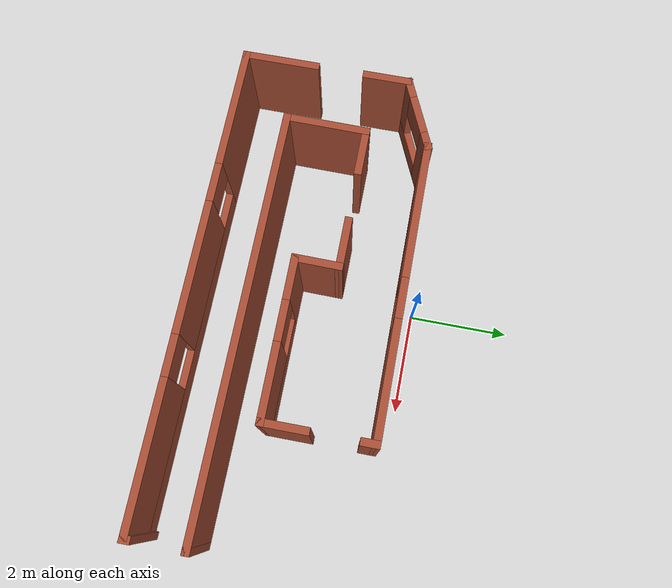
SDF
<?xml version='1.0'?>
<sdf version='1.7'>
  <model name='mybuilding'>
    <pose>0.444099 -2.1725 0 0 -0 0</pose>
    <link name='Wall_0'>
      <pose>-4.7641 -0.4225 0 0 -0 -1.5708</pose>
      <visual name='Wall_0_Visual_0'>
        <pose>-1.2425 0 1 0 -0 0</pose>
        <geometry>
          <box>
            <size>1.015 0.15 2</size>
          </box>
        </geometry>
        <material>
          <script>
            <uri>file://media/materials/scripts/gazebo.material</uri>
            <name>Gazebo/Bricks</name>
          </script>
          <ambient>0.996078 0.47451 0.0196078 1</ambient>
        </material>
        <meta>
          <layer>0</layer>
        </meta>
      </visual>
      <collision name='Wall_0_Collision_0'>
        <geometry>
          <box>
            <size>1.015 0.15 2</size>
          </box>
        </geometry>
        <pose>-1.2425 0 1 0 -0 0</pose>
      </collision>
      <visual name='Wall_0_Visual_1'>
        <pose>0.9575 0 1 0 -0 0</pose>
        <geometry>
          <box>
            <size>1.585 0.15 2</size>
          </box>
        </geometry>
        <material>
          <script>
            <uri>file://media/materials/scripts/gazebo.material</uri>
            <name>Gazebo/Bricks</name>
          </script>
          <ambient>0.996078 0.47451 0.0196078 1</ambient>
        </material>
        <meta>
          <layer>0</layer>
        </meta>
      </visual>
      <collision name='Wall_0_Collision_1'>
        <geometry>
          <box>
            <size>1.585 0.15 2</size>
          </box>
        </geometry>
        <pose>0.9575 0 1 0 -0 0</pose>
      </collision>
    </link>
    <link name='Wall_1'>
      <pose>0.011901 -2.0975 0 0 -0 0</pose>
      <visual name='Wall_1_Visual_0'>
        <pose>-3.5808 0 1 0 -0 0</pose>
        <geometry>
          <box>
            <size>2.5408 0.15 2</size>
          </box>
        </geometry>
        <material>
          <script>
            <uri>file://media/materials/scripts/gazebo.material</uri>
            <name>Gazebo/Bricks</name>
          </script>
          <ambient>0.996078 0.47451 0.0196078 1</ambient>
        </material>
        <meta>
          <layer>0</layer>
        </meta>
      </visual>
      <collision name='Wall_1_Collision_0'>
        <geometry>
          <box>
            <size>2.5408 0.15 2</size>
          </box>
        </geometry>
        <pose>-3.5808 0 1 0 -0 0</pose>
      </collision>
      <visual name='Wall_1_Visual_1'>
        <pose>1.2704 0 0.25 0 -0 0</pose>
        <geometry>
          <box>
            <size>7.1616 0.15 0.5</size>
          </box>
        </geometry>
        <material>
          <script>
            <uri>file://media/materials/scripts/gazebo.material</uri>
            <name>Gazebo/Bricks</name>
          </script>
          <ambient>0.996078 0.47451 0.0196078 1</ambient>
        </material>
        <meta>
          <layer>0</layer>
        </meta>
      </visual>
      <collision name='Wall_1_Collision_1'>
        <geometry>
          <box>
            <size>7.1616 0.15 0.5</size>
          </box>
        </geometry>
        <pose>1.2704 0 0.25 0 -0 0</pose>
      </collision>
      <visual name='Wall_1_Visual_2'>
        <pose>-0.1791 0 1.25 0 -0 0</pose>
        <geometry>
          <box>
            <size>2.6626 0.15 1.5</size>
          </box>
        </geometry>
        <material>
          <script>
            <uri>file://media/materials/scripts/gazebo.material</uri>
            <name>Gazebo/Bricks</name>
          </script>
          <ambient>0.996078 0.47451 0.0196078 1</ambient>
        </material>
        <meta>
          <layer>0</layer>
        </meta>
      </visual>
      <collision name='Wall_1_Collision_2'>
        <geometry>
          <box>
            <size>2.6626 0.15 1.5</size>
          </box>
        </geometry>
        <pose>-0.1791 0 1.25 0 -0 0</pose>
      </collision>
      <visual name='Wall_1_Visual_3'>
        <pose>3.4017 0 1.25 0 -0 0</pose>
        <geometry>
          <box>
            <size>2.899 0.15 1.5</size>
          </box>
        </geometry>
        <material>
          <script>
            <uri>file://media/materials/scripts/gazebo.material</uri>
            <name>Gazebo/Bricks</name>
          </script>
          <ambient>0.996078 0.47451 0.0196078 1</ambient>
        </material>
        <meta>
          <layer>0</layer>
        </meta>
      </visual>
      <collision name='Wall_1_Collision_3'>
        <geometry>
          <box>
            <size>2.899 0.15 1.5</size>
          </box>
        </geometry>
        <pose>3.4017 0 1.25 0 -0 0</pose>
      </collision>
      <visual name='Wall_1_Visual_4'>
        <pose>-1.9104 0 1.65 0 -0 0</pose>
        <geometry>
          <box>
            <size>0.8 0.15 0.7</size>
          </box>
        </geometry>
        <material>
          <script>
            <uri>file://media/materials/scripts/gazebo.material</uri>
            <name>Gazebo/Bricks</name>
          </script>
          <ambient>0.996078 0.47451 0.0196078 1</ambient>
        </material>
        <meta>
          <layer>0</layer>
        </meta>
      </visual>
      <collision name='Wall_1_Collision_4'>
        <geometry>
          <box>
            <size>0.8 0.15 0.7</size>
          </box>
        </geometry>
        <pose>-1.9104 0 1.65 0 -0 0</pose>
      </collision>
      <visual name='Wall_1_Visual_5'>
        <pose>1.5522 0 1.65 0 -0 0</pose>
        <geometry>
          <box>
            <size>0.8 0.15 0.7</size>
          </box>
        </geometry>
        <material>
          <script>
            <uri>file://media/materials/scripts/gazebo.material</uri>
            <name>Gazebo/Bricks</name>
          </script>
          <ambient>0.996078 0.47451 0.0196078 1</ambient>
        </material>
        <meta>
          <layer>0</layer>
        </meta>
      </visual>
      <collision name='Wall_1_Collision_5'>
        <geometry>
          <box>
            <size>0.8 0.15 0.7</size>
          </box>
        </geometry>
        <pose>1.5522 0 1.65 0 -0 0</pose>
      </collision>
    </link>
    <link name='Wall_10'>
      <pose>-4.0891 1.5525 0 0 -0 -2.72337</pose>
      <visual name='Wall_10_Visual_0'>
        <pose>-0.618255 0 1 0 -0 0</pose>
        <geometry>
          <box>
            <size>0.390819 0.15 2</size>
          </box>
        </geometry>
        <material>
          <script>
            <uri>file://media/materials/scripts/gazebo.material</uri>
            <name>Gazebo/Bricks</name>
          </script>
          <ambient>0.996078 0.47451 0.0196078 1</ambient>
        </material>
        <meta>
          <layer>0</layer>
        </meta>
      </visual>
      <collision name='Wall_10_Collision_0'>
        <geometry>
          <box>
            <size>0.390819 0.15 2</size>
          </box>
        </geometry>
        <pose>-0.618255 0 1 0 -0 0</pose>
      </collision>
      <visual name='Wall_10_Visual_1'>
        <pose>0.19541 0 0.25 0 -0 0</pose>
        <geometry>
          <box>
            <size>1.23651 0.15 0.5</size>
          </box>
        </geometry>
        <material>
          <script>
            <uri>file://media/materials/scripts/gazebo.material</uri>
            <name>Gazebo/Bricks</name>
          </script>
          <ambient>0.996078 0.47451 0.0196078 1</ambient>
        </material>
        <meta>
          <layer>0</layer>
        </meta>
      </visual>
      <collision name='Wall_10_Collision_1'>
        <geometry>
          <box>
            <size>1.23651 0.15 0.5</size>
          </box>
        </geometry>
        <pose>0.19541 0 0.25 0 -0 0</pose>
      </collision>
      <visual name='Wall_10_Visual_2'>
        <pose>0.59541 0 1.25 0 -0 0</pose>
        <geometry>
          <box>
            <size>0.43651 0.15 1.5</size>
          </box>
        </geometry>
        <material>
          <script>
            <uri>file://media/materials/scripts/gazebo.material</uri>
            <name>Gazebo/Bricks</name>
          </script>
          <ambient>0.996078 0.47451 0.0196078 1</ambient>
        </material>
        <meta>
          <layer>0</layer>
        </meta>
      </visual>
      <collision name='Wall_10_Collision_2'>
        <geometry>
          <box>
            <size>0.43651 0.15 1.5</size>
          </box>
        </geometry>
        <pose>0.59541 0 1.25 0 -0 0</pose>
      </collision>
      <visual name='Wall_10_Visual_3'>
        <pose>-0.022845 0 1.65 0 -0 0</pose>
        <geometry>
          <box>
            <size>0.8 0.15 0.7</size>
          </box>
        </geometry>
        <material>
          <script>
            <uri>file://media/materials/scripts/gazebo.material</uri>
            <name>Gazebo/Bricks</name>
          </script>
          <ambient>0.996078 0.47451 0.0196078 1</ambient>
        </material>
        <meta>
          <layer>0</layer>
        </meta>
      </visual>
      <collision name='Wall_10_Collision_3'>
        <geometry>
          <box>
            <size>0.8 0.15 0.7</size>
          </box>
        </geometry>
        <pose>-0.022845 0 1.65 0 -0 0</pose>
      </collision>
    </link>
    <link name='Wall_2'>
      <pose>4.7879 -1.5475 0 0 -0 1.5708</pose>
      <visual name='Wall_2_Visual_0'>
        <pose>-0.5225 0 1 0 -0 0</pose>
        <geometry>
          <box>
            <size>0.205 0.15 2</size>
          </box>
        </geometry>
        <material>
          <script>
            <uri>file://media/materials/scripts/gazebo.material</uri>
            <name>Gazebo/Bricks</name>
          </script>
          <ambient>0.996078 0.47451 0.0196078 1</ambient>
        </material>
        <meta>
          <layer>0</layer>
        </meta>
      </visual>
      <collision name='Wall_2_Collision_0'>
        <geometry>
          <box>
            <size>0.205 0.15 2</size>
          </box>
        </geometry>
        <pose>-0.5225 0 1 0 -0 0</pose>
      </collision>
      <visual name='Wall_2_Visual_1'>
        <pose>0.5525 0 1 0 -0 0</pose>
        <geometry>
          <box>
            <size>0.145 0.15 2</size>
          </box>
        </geometry>
        <material>
          <script>
            <uri>file://media/materials/scripts/gazebo.material</uri>
            <name>Gazebo/Bricks</name>
          </script>
          <ambient>0.996078 0.47451 0.0196078 1</ambient>
        </material>
        <meta>
          <layer>0</layer>
        </meta>
      </visual>
      <collision name='Wall_2_Collision_1'>
        <geometry>
          <box>
            <size>0.145 0.15 2</size>
          </box>
        </geometry>
        <pose>0.5525 0 1 0 -0 0</pose>
      </collision>
    </link>
    <link name='Wall_3'>
      <collision name='Wall_3_Collision'>
        <geometry>
          <box>
            <size>8.46826 0.15 2</size>
          </box>
        </geometry>
        <pose>0 0 1 0 -0 0</pose>
      </collision>
      <visual name='Wall_3_Visual'>
        <pose>0 0 1 0 -0 0</pose>
        <geometry>
          <box>
            <size>8.46826 0.15 2</size>
          </box>
        </geometry>
        <material>
          <script>
            <uri>file://media/materials/scripts/gazebo.material</uri>
            <name>Gazebo/Bricks</name>
          </script>
          <ambient>0.996078 0.47451 0.0196078 1</ambient>
        </material>
        <meta>
          <layer>0</layer>
        </meta>
      </visual>
      <pose>0.628901 -0.9975 0 0 -0 3.14159</pose>
    </link>
    <link name='Wall_4'>
      <collision name='Wall_4_Collision'>
        <geometry>
          <box>
            <size>1.75 0.15 2</size>
          </box>
        </geometry>
        <pose>0 0 1 0 -0 0</pose>
      </collision>
      <visual name='Wall_4_Visual'>
        <pose>0 0 1 0 -0 0</pose>
        <geometry>
          <box>
            <size>1.75 0.15 2</size>
          </box>
        </geometry>
        <material>
          <script>
            <uri>file://media/materials/scripts/gazebo.material</uri>
            <name>Gazebo/Bricks</name>
          </script>
          <ambient>0.996078 0.47451 0.0196078 1</ambient>
        </material>
        <meta>
          <layer>0</layer>
        </meta>
      </visual>
      <pose>-3.5221 -0.1975 0 0 -0 1.5608</pose>
    </link>
    <link name='Wall_5'>
      <pose>-2.0891 0.6025 0 0 -0 0</pose>
      <visual name='Wall_5_Visual_0'>
        <pose>-0.989176 0 1 0 -0 0</pose>
        <geometry>
          <box>
            <size>1.02165 0.15 2</size>
          </box>
        </geometry>
        <material>
          <script>
            <uri>file://media/materials/scripts/gazebo.material</uri>
            <name>Gazebo/Bricks</name>
          </script>
          <ambient>0.996078 0.47451 0.0196078 1</ambient>
        </material>
        <meta>
          <layer>0</layer>
        </meta>
      </visual>
      <collision name='Wall_5_Collision_0'>
        <geometry>
          <box>
            <size>1.02165 0.15 2</size>
          </box>
        </geometry>
        <pose>-0.989176 0 1 0 -0 0</pose>
      </collision>
      <visual name='Wall_5_Visual_1'>
        <pose>0.960824 0 1 0 -0 0</pose>
        <geometry>
          <box>
            <size>1.07835 0.15 2</size>
          </box>
        </geometry>
        <material>
          <script>
            <uri>file://media/materials/scripts/gazebo.material</uri>
            <name>Gazebo/Bricks</name>
          </script>
          <ambient>0.996078 0.47451 0.0196078 1</ambient>
        </material>
        <meta>
          <layer>0</layer>
        </meta>
      </visual>
      <collision name='Wall_5_Collision_1'>
        <geometry>
          <box>
            <size>1.07835 0.15 2</size>
          </box>
        </geometry>
        <pose>0.960824 0 1 0 -0 0</pose>
      </collision>
    </link>
    <link name='Wall_6'>
      <collision name='Wall_6_Collision'>
        <geometry>
          <box>
            <size>1 0.15 2</size>
          </box>
        </geometry>
        <pose>0 0 1 0 -0 0</pose>
      </collision>
      <visual name='Wall_6_Visual'>
        <pose>0 0 1 0 -0 0</pose>
        <geometry>
          <box>
            <size>1 0.15 2</size>
          </box>
        </geometry>
        <material>
          <script>
            <uri>file://media/materials/scripts/gazebo.material</uri>
            <name>Gazebo/Bricks</name>
          </script>
          <ambient>0.996078 0.47451 0.0196078 1</ambient>
        </material>
        <meta>
          <layer>0</layer>
        </meta>
      </visual>
      <pose>-0.670099 0.1775 0 0 -0 -1.58491</pose>
    </link>
    <link name='Wall_7'>
      <pose>0.879901 -0.2415 0 0 -0 0.003856</pose>
      <visual name='Wall_7_Visual_0'>
        <pose>-1.17982 0 1 0 -0 0</pose>
        <geometry>
          <box>
            <size>0.90239 0.15 2</size>
          </box>
        </geometry>
        <material>
          <script>
            <uri>file://media/materials/scripts/gazebo.material</uri>
            <name>Gazebo/Bricks</name>
          </script>
          <ambient>0.996078 0.47451 0.0196078 1</ambient>
        </material>
        <meta>
          <layer>0</layer>
        </meta>
      </visual>
      <collision name='Wall_7_Collision_0'>
        <geometry>
          <box>
            <size>0.90239 0.15 2</size>
          </box>
        </geometry>
        <pose>-1.17982 0 1 0 -0 0</pose>
      </collision>
      <visual name='Wall_7_Visual_1'>
        <pose>0.451195 0 0.25 0 -0 0</pose>
        <geometry>
          <box>
            <size>2.35963 0.15 0.5</size>
          </box>
        </geometry>
        <material>
          <script>
            <uri>file://media/materials/scripts/gazebo.material</uri>
            <name>Gazebo/Bricks</name>
          </script>
          <ambient>0.996078 0.47451 0.0196078 1</ambient>
        </material>
        <meta>
          <layer>0</layer>
        </meta>
      </visual>
      <collision name='Wall_7_Collision_1'>
        <geometry>
          <box>
            <size>2.35963 0.15 0.5</size>
          </box>
        </geometry>
        <pose>0.451195 0 0.25 0 -0 0</pose>
      </collision>
      <visual name='Wall_7_Visual_2'>
        <pose>0.851195 0 1.25 0 -0 0</pose>
        <geometry>
          <box>
            <size>1.55963 0.15 1.5</size>
          </box>
        </geometry>
        <material>
          <script>
            <uri>file://media/materials/scripts/gazebo.material</uri>
            <name>Gazebo/Bricks</name>
          </script>
          <ambient>0.996078 0.47451 0.0196078 1</ambient>
        </material>
        <meta>
          <layer>0</layer>
        </meta>
      </visual>
      <collision name='Wall_7_Collision_2'>
        <geometry>
          <box>
            <size>1.55963 0.15 1.5</size>
          </box>
        </geometry>
        <pose>0.851195 0 1.25 0 -0 0</pose>
      </collision>
      <visual name='Wall_7_Visual_3'>
        <pose>-0.328622 0 1.65 0 -0 0</pose>
        <geometry>
          <box>
            <size>0.8 0.15 0.7</size>
          </box>
        </geometry>
        <material>
          <script>
            <uri>file://media/materials/scripts/gazebo.material</uri>
            <name>Gazebo/Bricks</name>
          </script>
          <ambient>0.996078 0.47451 0.0196078 1</ambient>
        </material>
        <meta>
          <layer>0</layer>
        </meta>
      </visual>
      <collision name='Wall_7_Collision_3'>
        <geometry>
          <box>
            <size>0.8 0.15 0.7</size>
          </box>
        </geometry>
        <pose>-0.328622 0 1.65 0 -0 0</pose>
      </collision>
    </link>
    <link name='Wall_8'>
      <pose>2.4359 0.8145 0 0 -0 1.5708</pose>
      <visual name='Wall_8_Visual_0'>
        <pose>-0.637509 0 1 0 -0 0</pose>
        <geometry>
          <box>
            <size>0.975017 0.15 2</size>
          </box>
        </geometry>
        <material>
          <script>
            <uri>file://media/materials/scripts/gazebo.material</uri>
            <name>Gazebo/Bricks</name>
          </script>
          <ambient>0.996078 0.47451 0.0196078 1</ambient>
        </material>
        <meta>
          <layer>0</layer>
        </meta>
      </visual>
      <collision name='Wall_8_Collision_0'>
        <geometry>
          <box>
            <size>0.975017 0.15 2</size>
          </box>
        </geometry>
        <pose>-0.637509 0 1 0 -0 0</pose>
      </collision>
      <visual name='Wall_8_Visual_1'>
        <pose>0.937509 0 1 0 -0 0</pose>
        <geometry>
          <box>
            <size>0.375017 0.15 2</size>
          </box>
        </geometry>
        <material>
          <script>
            <uri>file://media/materials/scripts/gazebo.material</uri>
            <name>Gazebo/Bricks</name>
          </script>
          <ambient>0.996078 0.47451 0.0196078 1</ambient>
        </material>
        <meta>
          <layer>0</layer>
        </meta>
      </visual>
      <collision name='Wall_8_Collision_1'>
        <geometry>
          <box>
            <size>0.375017 0.15 2</size>
          </box>
        </geometry>
        <pose>0.937509 0 1 0 -0 0</pose>
      </collision>
    </link>
    <link name='Wall_9'>
      <pose>-0.489099 1.8585 0 0 -0 -3.13954</pose>
      <visual name='Wall_9_Visual_0'>
        <pose>-1.80382 0 1 0 -0 0</pose>
        <geometry>
          <box>
            <size>2.39235 0.15 2</size>
          </box>
        </geometry>
        <material>
          <script>
            <uri>file://media/materials/scripts/gazebo.material</uri>
            <name>Gazebo/Bricks</name>
          </script>
          <ambient>0.996078 0.47451 0.0196078 1</ambient>
        </material>
        <meta>
          <layer>0</layer>
        </meta>
      </visual>
      <collision name='Wall_9_Collision_0'>
        <geometry>
          <box>
            <size>2.39235 0.15 2</size>
          </box>
        </geometry>
        <pose>-1.80382 0 1 0 -0 0</pose>
      </collision>
      <visual name='Wall_9_Visual_1'>
        <pose>1.19618 0 0.25 0 -0 0</pose>
        <geometry>
          <box>
            <size>3.60765 0.15 0.5</size>
          </box>
        </geometry>
        <material>
          <script>
            <uri>file://media/materials/scripts/gazebo.material</uri>
            <name>Gazebo/Bricks</name>
          </script>
          <ambient>0.996078 0.47451 0.0196078 1</ambient>
        </material>
        <meta>
          <layer>0</layer>
        </meta>
      </visual>
      <collision name='Wall_9_Collision_1'>
        <geometry>
          <box>
            <size>3.60765 0.15 0.5</size>
          </box>
        </geometry>
        <pose>1.19618 0 0.25 0 -0 0</pose>
      </collision>
      <visual name='Wall_9_Visual_2'>
        <pose>1.59618 0 1.25 0 -0 0</pose>
        <geometry>
          <box>
            <size>2.80765 0.15 1.5</size>
          </box>
        </geometry>
        <material>
          <script>
            <uri>file://media/materials/scripts/gazebo.material</uri>
            <name>Gazebo/Bricks</name>
          </script>
          <ambient>0.996078 0.47451 0.0196078 1</ambient>
        </material>
        <meta>
          <layer>0</layer>
        </meta>
      </visual>
      <collision name='Wall_9_Collision_2'>
        <geometry>
          <box>
            <size>2.80765 0.15 1.5</size>
          </box>
        </geometry>
        <pose>1.59618 0 1.25 0 -0 0</pose>
      </collision>
      <visual name='Wall_9_Visual_3'>
        <pose>-0.207648 0 1.65 0 -0 0</pose>
        <geometry>
          <box>
            <size>0.8 0.15 0.7</size>
          </box>
        </geometry>
        <material>
          <script>
            <uri>file://media/materials/scripts/gazebo.material</uri>
            <name>Gazebo/Bricks</name>
          </script>
          <ambient>0.996078 0.47451 0.0196078 1</ambient>
        </material>
        <meta>
          <layer>0</layer>
        </meta>
      </visual>
      <collision name='Wall_9_Collision_3'>
        <geometry>
          <box>
            <size>0.8 0.15 0.7</size>
          </box>
        </geometry>
        <pose>-0.207648 0 1.65 0 -0 0</pose>
      </collision>
    </link>
    <static>1</static>
  </model>
</sdf>
